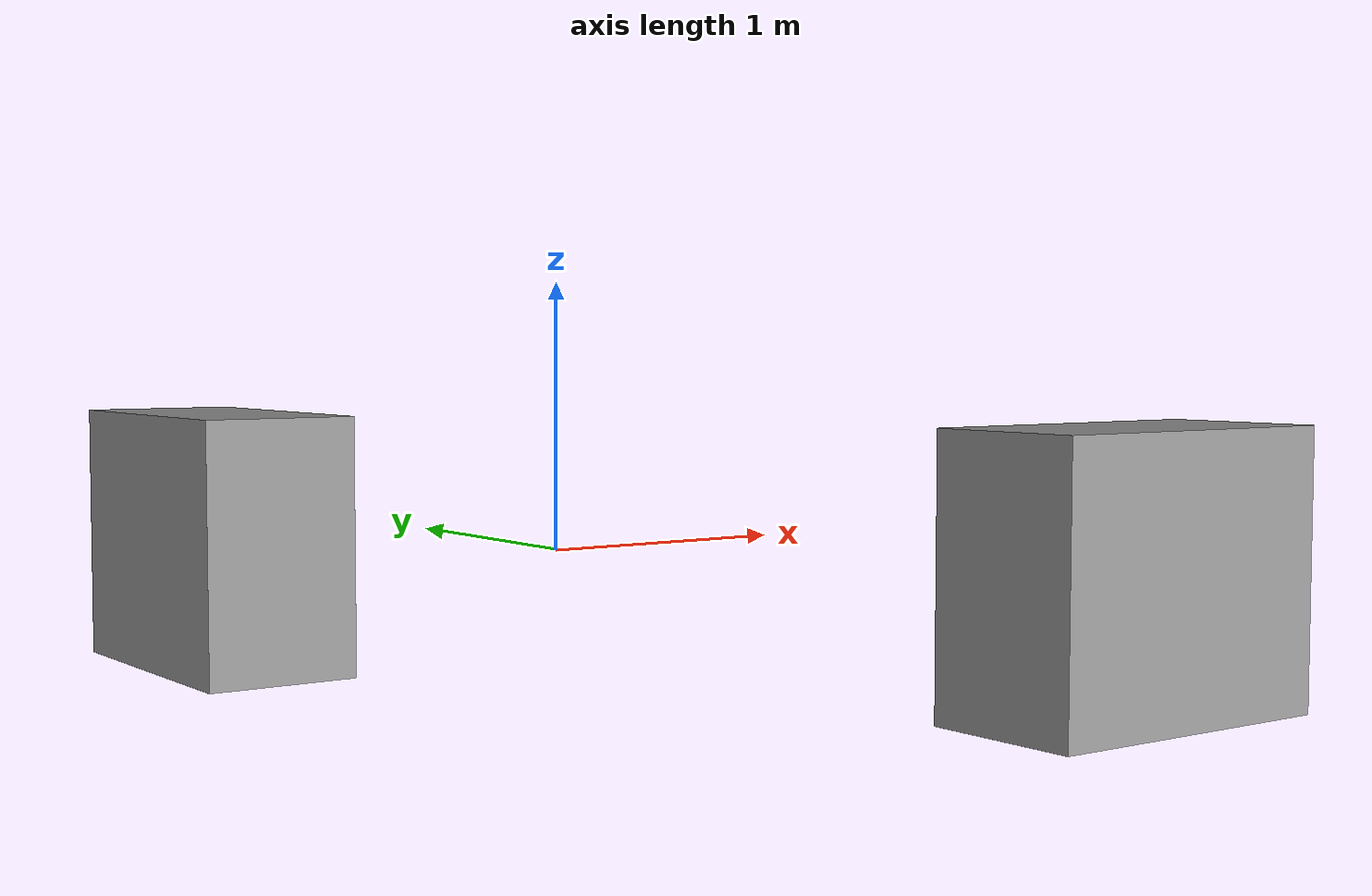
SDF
<?xml version='1.0'?>
<sdf version='1.6'>
  <model name='interior'>
    <link name='link_0_clone'>
      <inertial>
        <mass>1.44494</mass>
        <inertia>
          <ixx>0.125356</ixx>
          <ixy>0</ixy>
          <ixz>0</ixz>
          <iyy>0.261233</iyy>
          <iyz>0</iyz>
          <izz>0.25041</izz>
        </inertia>
        <pose frame=''>0 0 0 0 -0 0</pose>
      </inertial>
      <pose frame=''>-0.87261 1.11836 0 0 -0 1.56751</pose>
      <gravity>1</gravity>
      <self_collide>0</self_collide>
      <kinematic>0</kinematic>
      <enable_wind>0</enable_wind>
      <visual name='visual'>
        <pose frame=''>0 0 0 0 -0 0</pose>
        <geometry>
          <box>
            <size>1.194 0.597 1</size>
          </box>
        </geometry>
        <material>
          <lighting>1</lighting>
          <script>
            <uri>file://media/materials/scripts/gazebo.material</uri>
            <name>Gazebo/Grey</name>
          </script>
          <shader type='normal_map_object_space'>
            <normal_map>__default__</normal_map>
          </shader>
          <ambient>0.3 0.3 0.3 1</ambient>
          <diffuse>0.7 0.7 0.7 1</diffuse>
          <specular>0.01 0.01 0.01 1</specular>
          <emissive>0 0 0 1</emissive>
        </material>
        <transparency>0</transparency>
        <cast_shadows>1</cast_shadows>
      </visual>
      <collision name='collision'>
        <laser_retro>0</laser_retro>
        <max_contacts>10</max_contacts>
        <pose frame=''>0 0 0 0 -0 0</pose>
        <geometry>
          <box>
            <size>1.194 0.597 1</size>
          </box>
        </geometry>
        <surface>
          <friction>
            <ode>
              <mu>1</mu>
              <mu2>1</mu2>
              <fdir1>0 0 0</fdir1>
              <slip1>0</slip1>
              <slip2>0</slip2>
            </ode>
            <torsional>
              <coefficient>1</coefficient>
              <patch_radius>0</patch_radius>
              <surface_radius>0</surface_radius>
              <use_patch_radius>1</use_patch_radius>
              <ode>
                <slip>0</slip>
              </ode>
            </torsional>
          </friction>
          <bounce>
            <restitution_coefficient>0</restitution_coefficient>
            <threshold>1e+06</threshold>
          </bounce>
          <contact>
            <collide_without_contact>0</collide_without_contact>
            <collide_without_contact_bitmask>1</collide_without_contact_bitmask>
            <collide_bitmask>1</collide_bitmask>
            <ode>
              <soft_cfm>0</soft_cfm>
              <soft_erp>0.2</soft_erp>
              <kp>1e+13</kp>
              <kd>1</kd>
              <max_vel>0.01</max_vel>
              <min_depth>0</min_depth>
            </ode>
            <bullet>
              <split_impulse>1</split_impulse>
              <split_impulse_penetration_threshold>-0.01</split_impulse_penetration_threshold>
              <soft_cfm>0</soft_cfm>
              <soft_erp>0.2</soft_erp>
              <kp>1e+13</kp>
              <kd>1</kd>
            </bullet>
          </contact>
        </surface>
      </collision>
    </link>
    <link name='link_0_clone_clone'>
      <inertial>
        <mass>1.44494</mass>
        <inertia>
          <ixx>0.125356</ixx>
          <ixy>0</ixy>
          <ixz>0</ixz>
          <iyy>0.261233</iyy>
          <iyz>0</iyz>
          <izz>0.25041</izz>
        </inertia>
        <pose frame=''>0 0 0 0 -0 0</pose>
      </inertial>
      <pose frame=''>1.15827 -1.75402 0 0 -0 0.000646</pose>
      <gravity>1</gravity>
      <self_collide>0</self_collide>
      <kinematic>0</kinematic>
      <enable_wind>0</enable_wind>
      <visual name='visual'>
        <pose frame=''>0 0 0 0 -0 0</pose>
        <geometry>
          <box>
            <size>1.194 0.597 1</size>
          </box>
        </geometry>
        <material>
          <lighting>1</lighting>
          <script>
            <uri>file://media/materials/scripts/gazebo.material</uri>
            <name>Gazebo/Grey</name>
          </script>
          <shader type='normal_map_object_space'>
            <normal_map>__default__</normal_map>
          </shader>
          <ambient>0.3 0.3 0.3 1</ambient>
          <diffuse>0.7 0.7 0.7 1</diffuse>
          <specular>0.01 0.01 0.01 1</specular>
          <emissive>0 0 0 1</emissive>
        </material>
        <transparency>0</transparency>
        <cast_shadows>1</cast_shadows>
      </visual>
      <collision name='collision'>
        <laser_retro>0</laser_retro>
        <max_contacts>10</max_contacts>
        <pose frame=''>0 0 0 0 -0 0</pose>
        <geometry>
          <box>
            <size>1.194 0.597 1</size>
          </box>
        </geometry>
        <surface>
          <friction>
            <ode>
              <mu>1</mu>
              <mu2>1</mu2>
              <fdir1>0 0 0</fdir1>
              <slip1>0</slip1>
              <slip2>0</slip2>
            </ode>
            <torsional>
              <coefficient>1</coefficient>
              <patch_radius>0</patch_radius>
              <surface_radius>0</surface_radius>
              <use_patch_radius>1</use_patch_radius>
              <ode>
                <slip>0</slip>
              </ode>
            </torsional>
          </friction>
          <bounce>
            <restitution_coefficient>0</restitution_coefficient>
            <threshold>1e+06</threshold>
          </bounce>
          <contact>
            <collide_without_contact>0</collide_without_contact>
            <collide_without_contact_bitmask>1</collide_without_contact_bitmask>
            <collide_bitmask>1</collide_bitmask>
            <ode>
              <soft_cfm>0</soft_cfm>
              <soft_erp>0.2</soft_erp>
              <kp>1e+13</kp>
              <kd>1</kd>
              <max_vel>0.01</max_vel>
              <min_depth>0</min_depth>
            </ode>
            <bullet>
              <split_impulse>1</split_impulse>
              <split_impulse_penetration_threshold>-0.01</split_impulse_penetration_threshold>
              <soft_cfm>0</soft_cfm>
              <soft_erp>0.2</soft_erp>
              <kp>1e+13</kp>
              <kd>1</kd>
            </bullet>
          </contact>
        </surface>
      </collision>
    </link>
    <static>0</static>
    <allow_auto_disable>1</allow_auto_disable>
  </model>
</sdf>
